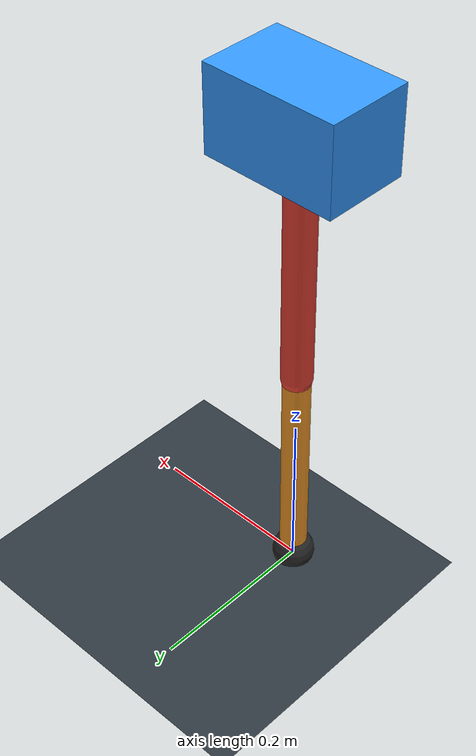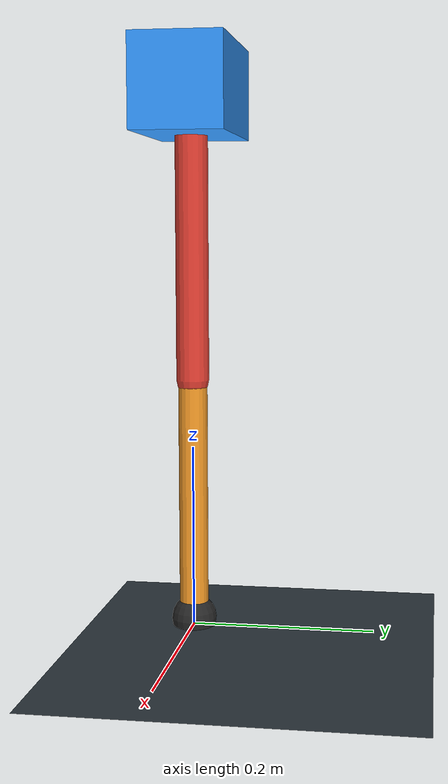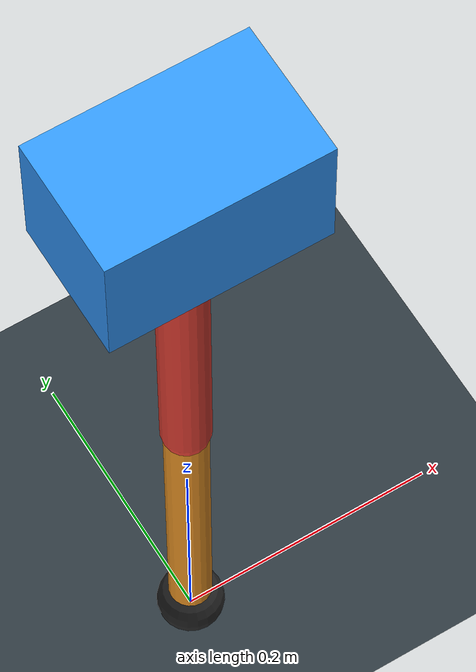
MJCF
<mujoco model="single_axis_two_bar">
  <compiler angle="radian" inertiafromgeom="true"/>
  <option timestep="0.001" integrator="implicitfast" gravity="0 0 -9.81"/>
  <default>
    <joint damping="0.08"/>
    <geom friction="1.2 0.01 0.0001" condim="3"/>
  </default>
  <worldbody>
    <geom name="floor" type="plane" size="5 5 0.1" rgba="0.18 0.22 0.25 1"/>
    <body name="carriage" pos="0 0 0.5912415559906663">
      <joint name="pole_slide" type="slide" axis="0 0 1"/>
      <geom name="payload" type="box" size="0.08 0.05 0.05" mass="3.522786760547633" rgba="0.2 0.6 1 1"/>
      <body name="thigh" pos="0 0 0">
        <joint name="hip" type="hinge" axis="0 1 0"/>
        <geom name="thigh_link" type="capsule" fromto="0 0 0 0 0 -0.31620254763348876" size="0.018" mass="0.2252984934368877" rgba="0.9 0.25 0.2 1"/>
        <body name="shank" pos="0 0 -0.31620254763348876">
          <joint name="knee" type="hinge" axis="0 1 0"/>
          <geom name="shank_link" type="capsule" fromto="0 0 0 0 0 -0.2675516338001879" size="0.016" mass="0.1906340744655535" rgba="0.95 0.6 0.15 1"/>
          <geom name="foot" type="sphere" pos="0 0 -0.2675516338001879" size="0.025" mass="0.03" rgba="0.15 0.15 0.15 1"/>
          <site name="toe" pos="0 0 -0.2675516338001879" size="0.008"/>
        </body>
      </body>
    </body>
  </worldbody>
  <actuator>
    <motor name="hip_motor" joint="hip" ctrlrange="-45.043150548807766 45.043150548807766"/>
    <motor name="knee_motor" joint="knee" ctrlrange="-148.75757751695852 148.75757751695852"/>
  </actuator>
</mujoco>
